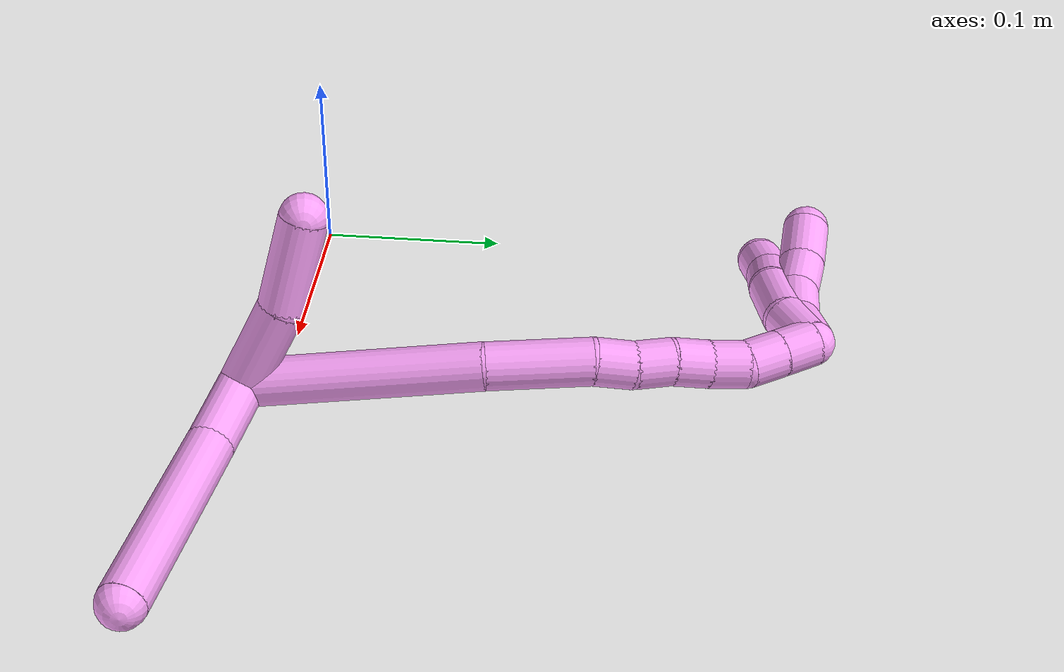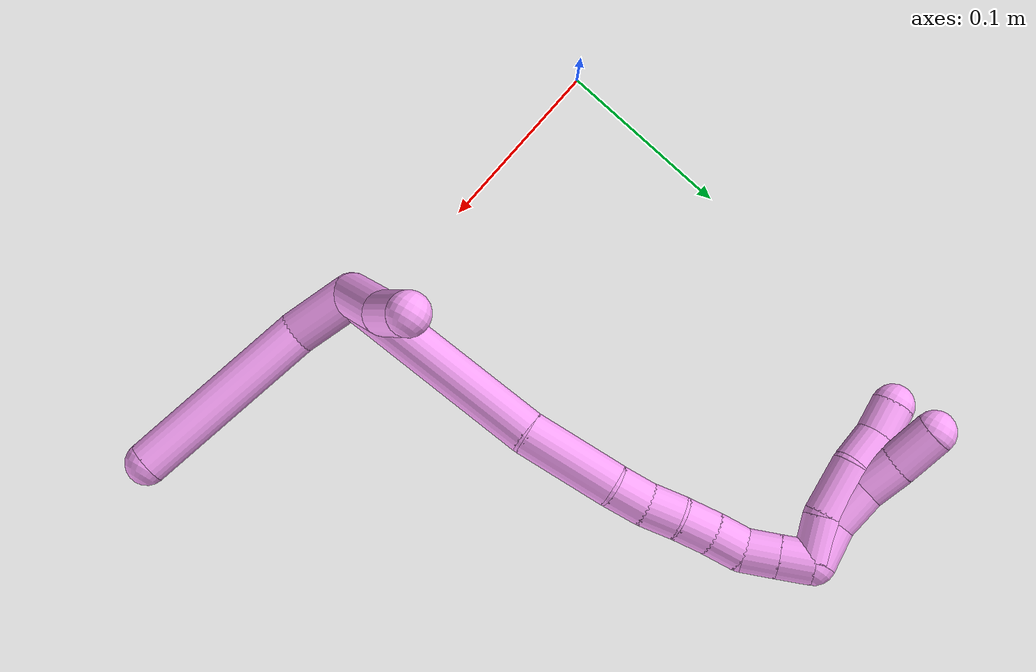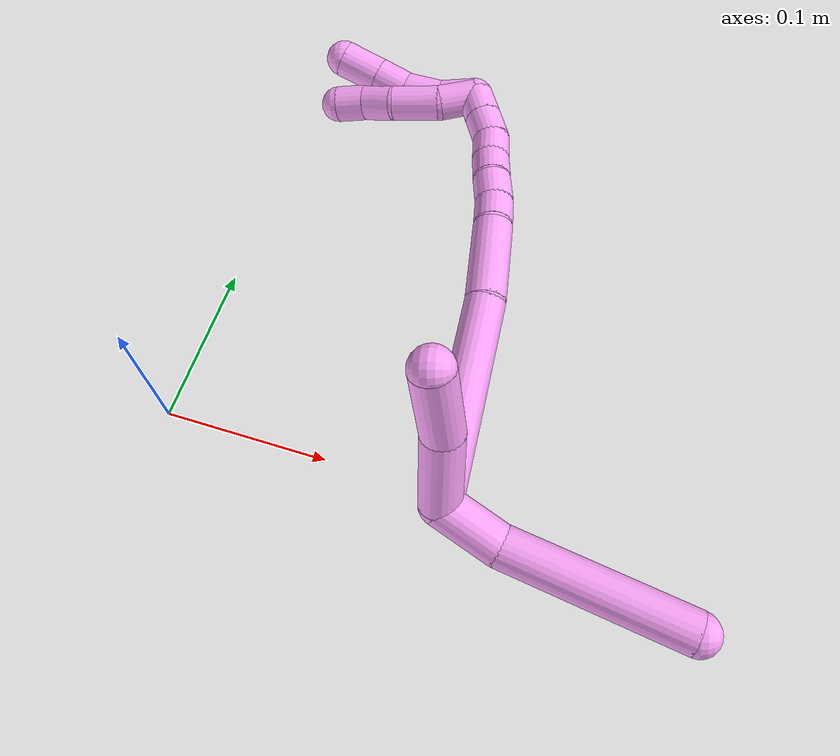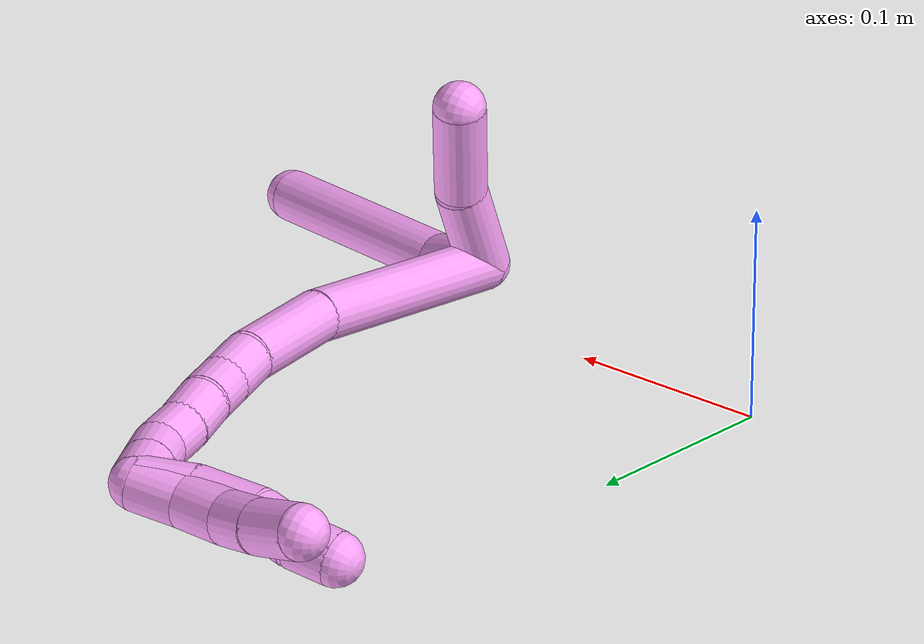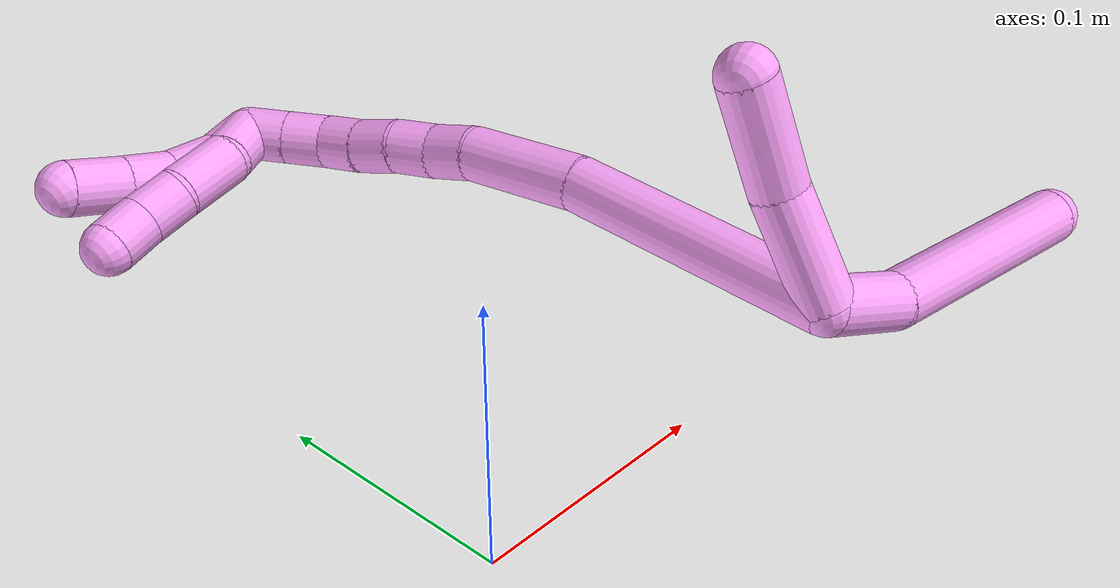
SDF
<sdf version="1.7">
 <world name="default">
  <model name="4">
   <static>0</static>
   <link name="4">
    <collision name="collision-cylinder-e_1_2_8">
     <pose>0.003963 -0.010553 -0.016032 2.55944 0.203629 0.657322</pose>
     <geometry><cylinder><radius>0.0125</radius><length>0.039198</length></cylinder></geometry>
     <surface>
      <friction><ode><mu>1.16</mu><mu2>1.16</mu2><slip1>0</slip1><slip2>0</slip2></ode></friction>
      <contact><ode><kp>1e+06</kp><kd>1</kd><max_vel>0</max_vel><min_depth>0.001</min_depth></ode></contact>
     </surface>
    </collision>
    <visual name="visual-cylinder-e_1_2_8">
     <pose>0.003963 -0.010553 -0.016032 2.55944 0.203629 0.657322</pose>
     <geometry><cylinder><radius>0.0125</radius><length>0.039198</length></cylinder></geometry>
     <material><ambient>1 0.65098 0.996078 1</ambient></material>
    </visual>
    <collision name="collision-cylinder-e_2_8_6">
     <pose>0.020075 -0.035864 -0.084064 2.86507 0.221075 1.34658</pose>
     <geometry><cylinder><radius>0.0125</radius><length>0.110802</length></cylinder></geometry>
     <surface>
      <friction><ode><mu>1.16</mu><mu2>1.16</mu2><slip1>0</slip1><slip2>0</slip2></ode></friction>
      <contact><ode><kp>1e+06</kp><kd>1</kd><max_vel>0</max_vel><min_depth>0.001</min_depth></ode></contact>
     </surface>
    </collision>
    <visual name="visual-cylinder-e_2_8_6">
     <pose>0.020075 -0.035864 -0.084064 2.86507 0.221075 1.34658</pose>
     <geometry><cylinder><radius>0.0125</radius><length>0.110802</length></cylinder></geometry>
     <material><ambient>1 0.65098 0.996078 1</ambient></material>
    </visual>
    <collision name="collision-cylinder-e_1_2_9">
     <pose>-0.001085 0.025272 -0.002677 -1.67632 -0.042655 0.04741</pose>
     <geometry><cylinder><radius>0.0125</radius><length>0.050874</length></cylinder></geometry>
     <surface>
      <friction><ode><mu>1.16</mu><mu2>1.16</mu2><slip1>0</slip1><slip2>0</slip2></ode></friction>
      <contact><ode><kp>1e+06</kp><kd>1</kd><max_vel>0</max_vel><min_depth>0.001</min_depth></ode></contact>
     </surface>
    </collision>
    <visual name="visual-cylinder-e_1_2_9">
     <pose>-0.001085 0.025272 -0.002677 -1.67632 -0.042655 0.04741</pose>
     <geometry><cylinder><radius>0.0125</radius><length>0.050874</length></cylinder></geometry>
     <material><ambient>1 0.65098 0.996078 1</ambient></material>
    </visual>
    <collision name="collision-cylinder-e_2_9_5">
     <pose>0.001546 0.074825 -0.005226 -1.56554 0.151831 -0.151037</pose>
     <geometry><cylinder><radius>0.0125</radius><length>0.049126</length></cylinder></geometry>
     <surface>
      <friction><ode><mu>1.16</mu><mu2>1.16</mu2><slip1>0</slip1><slip2>0</slip2></ode></friction>
      <contact><ode><kp>1e+06</kp><kd>1</kd><max_vel>0</max_vel><min_depth>0.001</min_depth></ode></contact>
     </surface>
    </collision>
    <visual name="visual-cylinder-e_2_9_5">
     <pose>0.001546 0.074825 -0.005226 -1.56554 0.151831 -0.151037</pose>
     <geometry><cylinder><radius>0.0125</radius><length>0.049126</length></cylinder></geometry>
     <material><ambient>1 0.65098 0.996078 1</ambient></material>
    </visual>
    <collision name="collision-cylinder-e_1_2_10">
     <pose>-0.052964 0.030767 -0.008453 -1.83891 -1.02859 1.27565</pose>
     <geometry><cylinder><radius>0.0125</radius><length>0.123665</length></cylinder></geometry>
     <surface>
      <friction><ode><mu>1.16</mu><mu2>1.16</mu2><slip1>0</slip1><slip2>0</slip2></ode></friction>
      <contact><ode><kp>1e+06</kp><kd>1</kd><max_vel>0</max_vel><min_depth>0.001</min_depth></ode></contact>
     </surface>
    </collision>
    <visual name="visual-cylinder-e_1_2_10">
     <pose>-0.052964 0.030767 -0.008453 -1.83891 -1.02859 1.27565</pose>
     <geometry><cylinder><radius>0.0125</radius><length>0.123665</length></cylinder></geometry>
     <material><ambient>1 0.65098 0.996078 1</ambient></material>
    </visual>
    <collision name="collision-cylinder-e_2_10_11">
     <pose>-0.130867 0.072982 -0.017305 -1.60574 -1.14025 1.17224</pose>
     <geometry><cylinder><radius>0.0125</radius><length>0.054886</length></cylinder></geometry>
     <surface>
      <friction><ode><mu>1.16</mu><mu2>1.16</mu2><slip1>0</slip1><slip2>0</slip2></ode></friction>
      <contact><ode><kp>1e+06</kp><kd>1</kd><max_vel>0</max_vel><min_depth>0.001</min_depth></ode></contact>
     </surface>
    </collision>
    <visual name="visual-cylinder-e_2_10_11">
     <pose>-0.130867 0.072982 -0.017305 -1.60574 -1.14025 1.17224</pose>
     <geometry><cylinder><radius>0.0125</radius><length>0.054886</length></cylinder></geometry>
     <material><ambient>1 0.65098 0.996078 1</ambient></material>
    </visual>
    <collision name="collision-cylinder-e_3_11_12">
     <pose>-0.166018 0.086894 -0.017237 -1.38293 -1.3298 1.15132</pose>
     <geometry><cylinder><radius>0.0125</radius><length>0.021034</length></cylinder></geometry>
     <surface>
      <friction><ode><mu>1.16</mu><mu2>1.16</mu2><slip1>0</slip1><slip2>0</slip2></ode></friction>
      <contact><ode><kp>1e+06</kp><kd>1</kd><max_vel>0</max_vel><min_depth>0.001</min_depth></ode></contact>
     </surface>
    </collision>
    <visual name="visual-cylinder-e_3_11_12">
     <pose>-0.166018 0.086894 -0.017237 -1.38293 -1.3298 1.15132</pose>
     <geometry><cylinder><radius>0.0125</radius><length>0.021034</length></cylinder></geometry>
     <material><ambient>1 0.65098 0.996078 1</ambient></material>
    </visual>
    <collision name="collision-cylinder-e_4_12_13">
     <pose>-0.185477 0.093253 -0.01524 -1.19667 -1.146 0.82874</pose>
     <geometry><cylinder><radius>0.0125</radius><length>0.020295</length></cylinder></geometry>
     <surface>
      <friction><ode><mu>1.16</mu><mu2>1.16</mu2><slip1>0</slip1><slip2>0</slip2></ode></friction>
      <contact><ode><kp>1e+06</kp><kd>1</kd><max_vel>0</max_vel><min_depth>0.001</min_depth></ode></contact>
     </surface>
    </collision>
    <visual name="visual-cylinder-e_4_12_13">
     <pose>-0.185477 0.093253 -0.01524 -1.19667 -1.146 0.82874</pose>
     <geometry><cylinder><radius>0.0125</radius><length>0.020295</length></cylinder></geometry>
     <material><ambient>1 0.65098 0.996078 1</ambient></material>
    </visual>
    <collision name="collision-cylinder-e_5_13_14">
     <pose>-0.204436 0.099398 -0.012517 -1.08313 -1.31417 0.86898</pose>
     <geometry><cylinder><radius>0.0125</radius><length>0.020085</length></cylinder></geometry>
     <surface>
      <friction><ode><mu>1.16</mu><mu2>1.16</mu2><slip1>0</slip1><slip2>0</slip2></ode></friction>
      <contact><ode><kp>1e+06</kp><kd>1</kd><max_vel>0</max_vel><min_depth>0.001</min_depth></ode></contact>
     </surface>
    </collision>
    <visual name="visual-cylinder-e_5_13_14">
     <pose>-0.204436 0.099398 -0.012517 -1.08313 -1.31417 0.86898</pose>
     <geometry><cylinder><radius>0.0125</radius><length>0.020085</length></cylinder></geometry>
     <material><ambient>1 0.65098 0.996078 1</ambient></material>
    </visual>
    <collision name="collision-cylinder-e_6_14_15">
     <pose>-0.223616 0.104844 -0.010736 -1.38921 -1.24034 1.07343</pose>
     <geometry><cylinder><radius>0.0125</radius><length>0.020015</length></cylinder></geometry>
     <surface>
      <friction><ode><mu>1.16</mu><mu2>1.16</mu2><slip1>0</slip1><slip2>0</slip2></ode></friction>
      <contact><ode><kp>1e+06</kp><kd>1</kd><max_vel>0</max_vel><min_depth>0.001</min_depth></ode></contact>
     </surface>
    </collision>
    <visual name="visual-cylinder-e_6_14_15">
     <pose>-0.223616 0.104844 -0.010736 -1.38921 -1.24034 1.07343</pose>
     <geometry><cylinder><radius>0.0125</radius><length>0.020015</length></cylinder></geometry>
     <material><ambient>1 0.65098 0.996078 1</ambient></material>
    </visual>
    <collision name="collision-cylinder-e_7_15_16">
     <pose>-0.241288 0.112639 -0.00674 -0.933074 -0.961457 0.513706</pose>
     <geometry><cylinder><radius>0.0125</radius><length>0.020013</length></cylinder></geometry>
     <surface>
      <friction><ode><mu>1.16</mu><mu2>1.16</mu2><slip1>0</slip1><slip2>0</slip2></ode></friction>
      <contact><ode><kp>1e+06</kp><kd>1</kd><max_vel>0</max_vel><min_depth>0.001</min_depth></ode></contact>
     </surface>
    </collision>
    <visual name="visual-cylinder-e_7_15_16">
     <pose>-0.241288 0.112639 -0.00674 -0.933074 -0.961457 0.513706</pose>
     <geometry><cylinder><radius>0.0125</radius><length>0.020013</length></cylinder></geometry>
     <material><ambient>1 0.65098 0.996078 1</ambient></material>
    </visual>
    <collision name="collision-cylinder-e_8_16_1">
     <pose>-0.257616 0.121926 0.000152 -0.931668 -0.947545 0.504544</pose>
     <geometry><cylinder><radius>0.0125</radius><length>0.020006</length></cylinder></geometry>
     <surface>
      <friction><ode><mu>1.16</mu><mu2>1.16</mu2><slip1>0</slip1><slip2>0</slip2></ode></friction>
      <contact><ode><kp>1e+06</kp><kd>1</kd><max_vel>0</max_vel><min_depth>0.001</min_depth></ode></contact>
     </surface>
    </collision>
    <visual name="visual-cylinder-e_8_16_1">
     <pose>-0.257616 0.121926 0.000152 -0.931668 -0.947545 0.504544</pose>
     <geometry><cylinder><radius>0.0125</radius><length>0.020006</length></cylinder></geometry>
     <material><ambient>1 0.65098 0.996078 1</ambient></material>
    </visual>
    <collision name="collision-cylinder-e_1_1_17">
     <pose>-0.261808 0.126109 0.01599 0.040701 0.307772 0.006314</pose>
     <geometry><cylinder><radius>0.0125</radius><length>0.02595</length></cylinder></geometry>
     <surface>
      <friction><ode><mu>1.16</mu><mu2>1.16</mu2><slip1>0</slip1><slip2>0</slip2></ode></friction>
      <contact><ode><kp>1e+06</kp><kd>1</kd><max_vel>0</max_vel><min_depth>0.001</min_depth></ode></contact>
     </surface>
    </collision>
    <visual name="visual-cylinder-e_1_1_17">
     <pose>-0.261808 0.126109 0.01599 0.040701 0.307772 0.006314</pose>
     <geometry><cylinder><radius>0.0125</radius><length>0.02595</length></cylinder></geometry>
     <material><ambient>1 0.65098 0.996078 1</ambient></material>
    </visual>
    <collision name="collision-cylinder-e_2_17_18">
     <pose>-0.25733 0.126248 0.044577 -0.03951 0.03366 -0.000665</pose>
     <geometry><cylinder><radius>0.0125</radius><length>0.032506</length></cylinder></geometry>
     <surface>
      <friction><ode><mu>1.16</mu><mu2>1.16</mu2><slip1>0</slip1><slip2>0</slip2></ode></friction>
      <contact><ode><kp>1e+06</kp><kd>1</kd><max_vel>0</max_vel><min_depth>0.001</min_depth></ode></contact>
     </surface>
    </collision>
    <visual name="visual-cylinder-e_2_17_18">
     <pose>-0.25733 0.126248 0.044577 -0.03951 0.03366 -0.000665</pose>
     <geometry><cylinder><radius>0.0125</radius><length>0.032506</length></cylinder></geometry>
     <material><ambient>1 0.65098 0.996078 1</ambient></material>
    </visual>
    <collision name="collision-cylinder-e_3_18_19">
     <pose>-0.258779 0.126546 0.071274 0.032845 -0.18841 -0.003104</pose>
     <geometry><cylinder><radius>0.0125</radius><length>0.021319</length></cylinder></geometry>
     <surface>
      <friction><ode><mu>1.16</mu><mu2>1.16</mu2><slip1>0</slip1><slip2>0</slip2></ode></friction>
      <contact><ode><kp>1e+06</kp><kd>1</kd><max_vel>0</max_vel><min_depth>0.001</min_depth></ode></contact>
     </surface>
    </collision>
    <visual name="visual-cylinder-e_3_18_19">
     <pose>-0.258779 0.126546 0.071274 0.032845 -0.18841 -0.003104</pose>
     <geometry><cylinder><radius>0.0125</radius><length>0.021319</length></cylinder></geometry>
     <material><ambient>1 0.65098 0.996078 1</ambient></material>
    </visual>
    <collision name="collision-cylinder-e_4_19_4">
     <pose>-0.260669 0.125811 0.091843 0.038687 0.010568 0.000204</pose>
     <geometry><cylinder><radius>0.0125</radius><length>0.020224</length></cylinder></geometry>
     <surface>
      <friction><ode><mu>1.16</mu><mu2>1.16</mu2><slip1>0</slip1><slip2>0</slip2></ode></friction>
      <contact><ode><kp>1e+06</kp><kd>1</kd><max_vel>0</max_vel><min_depth>0.001</min_depth></ode></contact>
     </surface>
    </collision>
    <visual name="visual-cylinder-e_4_19_4">
     <pose>-0.260669 0.125811 0.091843 0.038687 0.010568 0.000204</pose>
     <geometry><cylinder><radius>0.0125</radius><length>0.020224</length></cylinder></geometry>
     <material><ambient>1 0.65098 0.996078 1</ambient></material>
    </visual>
    <collision name="collision-cylinder-e_1_1_20">
     <pose>-0.264856 0.126485 0.015923 0.010409 0.07165 0.000373</pose>
     <geometry><cylinder><radius>0.0125</radius><length>0.024639</length></cylinder></geometry>
     <surface>
      <friction><ode><mu>1.16</mu><mu2>1.16</mu2><slip1>0</slip1><slip2>0</slip2></ode></friction>
      <contact><ode><kp>1e+06</kp><kd>1</kd><max_vel>0</max_vel><min_depth>0.001</min_depth></ode></contact>
     </surface>
    </collision>
    <visual name="visual-cylinder-e_1_1_20">
     <pose>-0.264856 0.126485 0.015923 0.010409 0.07165 0.000373</pose>
     <geometry><cylinder><radius>0.0125</radius><length>0.024639</length></cylinder></geometry>
     <material><ambient>1 0.65098 0.996078 1</ambient></material>
    </visual>
    <collision name="collision-cylinder-e_2_20_21">
     <pose>-0.265507 0.12915 0.040661 -0.220675 -0.119506 0.013255</pose>
     <geometry><cylinder><radius>0.0125</radius><length>0.025704</length></cylinder></geometry>
     <surface>
      <friction><ode><mu>1.16</mu><mu2>1.16</mu2><slip1>0</slip1><slip2>0</slip2></ode></friction>
      <contact><ode><kp>1e+06</kp><kd>1</kd><max_vel>0</max_vel><min_depth>0.001</min_depth></ode></contact>
     </surface>
    </collision>
    <visual name="visual-cylinder-e_2_20_21">
     <pose>-0.265507 0.12915 0.040661 -0.220675 -0.119506 0.013255</pose>
     <geometry><cylinder><radius>0.0125</radius><length>0.025704</length></cylinder></geometry>
     <material><ambient>1 0.65098 0.996078 1</ambient></material>
    </visual>
    <collision name="collision-cylinder-e_3_21_22">
     <pose>-0.2691 0.13687 0.063028 -0.461168 -0.184079 0.04333</pose>
     <geometry><cylinder><radius>0.0125</radius><length>0.022526</length></cylinder></geometry>
     <surface>
      <friction><ode><mu>1.16</mu><mu2>1.16</mu2><slip1>0</slip1><slip2>0</slip2></ode></friction>
      <contact><ode><kp>1e+06</kp><kd>1</kd><max_vel>0</max_vel><min_depth>0.001</min_depth></ode></contact>
     </surface>
    </collision>
    <visual name="visual-cylinder-e_3_21_22">
     <pose>-0.2691 0.13687 0.063028 -0.461168 -0.184079 0.04333</pose>
     <geometry><cylinder><radius>0.0125</radius><length>0.022526</length></cylinder></geometry>
     <material><ambient>1 0.65098 0.996078 1</ambient></material>
    </visual>
    <collision name="collision-cylinder-e_4_22_3">
     <pose>-0.27239 0.148114 0.084886 -0.486545 -0.090636 0.022509</pose>
     <geometry><cylinder><radius>0.0125</radius><length>0.027131</length></cylinder></geometry>
     <surface>
      <friction><ode><mu>1.16</mu><mu2>1.16</mu2><slip1>0</slip1><slip2>0</slip2></ode></friction>
      <contact><ode><kp>1e+06</kp><kd>1</kd><max_vel>0</max_vel><min_depth>0.001</min_depth></ode></contact>
     </surface>
    </collision>
    <visual name="visual-cylinder-e_4_22_3">
     <pose>-0.27239 0.148114 0.084886 -0.486545 -0.090636 0.022509</pose>
     <geometry><cylinder><radius>0.0125</radius><length>0.027131</length></cylinder></geometry>
     <material><ambient>1 0.65098 0.996078 1</ambient></material>
    </visual>
    <collision name="collision-sphere-3">
     <pose>-0.273618 0.154431 0.096828 0 -0 0</pose>
     <geometry><sphere><radius>0.0125</radius></sphere></geometry>
     <surface>
      <friction><ode><mu>1.16</mu><mu2>1.16</mu2><slip1>0</slip1><slip2>0</slip2></ode></friction>
      <contact><ode><kp>1e+06</kp><kd>1</kd><max_vel>0</max_vel><min_depth>0.001</min_depth></ode></contact>
     </surface>
    </collision>
    <visual name="visual-sphere-3">
     <pose>-0.273618 0.154431 0.096828 0 -0 0</pose>
     <geometry><sphere><radius>0.0125</radius></sphere></geometry>
     <material><ambient>1 0.65098 0.996078 1</ambient></material>
    </visual>
    <collision name="collision-sphere-22">
     <pose>-0.271162 0.141797 0.072944 0 -0 0</pose>
     <geometry><sphere><radius>0.0125</radius></sphere></geometry>
     <surface>
      <friction><ode><mu>1.16</mu><mu2>1.16</mu2><slip1>0</slip1><slip2>0</slip2></ode></friction>
      <contact><ode><kp>1e+06</kp><kd>1</kd><max_vel>0</max_vel><min_depth>0.001</min_depth></ode></contact>
     </surface>
    </collision>
    <visual name="visual-sphere-22">
     <pose>-0.271162 0.141797 0.072944 0 -0 0</pose>
     <geometry><sphere><radius>0.0125</radius></sphere></geometry>
     <material><ambient>1 0.65098 0.996078 1</ambient></material>
    </visual>
    <collision name="collision-sphere-21">
     <pose>-0.267039 0.131943 0.053112 0 -0 0</pose>
     <geometry><sphere><radius>0.0125</radius></sphere></geometry>
     <surface>
      <friction><ode><mu>1.16</mu><mu2>1.16</mu2><slip1>0</slip1><slip2>0</slip2></ode></friction>
      <contact><ode><kp>1e+06</kp><kd>1</kd><max_vel>0</max_vel><min_depth>0.001</min_depth></ode></contact>
     </surface>
    </collision>
    <visual name="visual-sphere-21">
     <pose>-0.267039 0.131943 0.053112 0 -0 0</pose>
     <geometry><sphere><radius>0.0125</radius></sphere></geometry>
     <material><ambient>1 0.65098 0.996078 1</ambient></material>
    </visual>
    <collision name="collision-sphere-20">
     <pose>-0.263974 0.126357 0.02821 0 -0 0</pose>
     <geometry><sphere><radius>0.0125</radius></sphere></geometry>
     <surface>
      <friction><ode><mu>1.16</mu><mu2>1.16</mu2><slip1>0</slip1><slip2>0</slip2></ode></friction>
      <contact><ode><kp>1e+06</kp><kd>1</kd><max_vel>0</max_vel><min_depth>0.001</min_depth></ode></contact>
     </surface>
    </collision>
    <visual name="visual-sphere-20">
     <pose>-0.263974 0.126357 0.02821 0 -0 0</pose>
     <geometry><sphere><radius>0.0125</radius></sphere></geometry>
     <material><ambient>1 0.65098 0.996078 1</ambient></material>
    </visual>
    <collision name="collision-sphere-4">
     <pose>-0.260562 0.12542 0.101947 0 -0 0</pose>
     <geometry><sphere><radius>0.0125</radius></sphere></geometry>
     <surface>
      <friction><ode><mu>1.16</mu><mu2>1.16</mu2><slip1>0</slip1><slip2>0</slip2></ode></friction>
      <contact><ode><kp>1e+06</kp><kd>1</kd><max_vel>0</max_vel><min_depth>0.001</min_depth></ode></contact>
     </surface>
    </collision>
    <visual name="visual-sphere-4">
     <pose>-0.260562 0.12542 0.101947 0 -0 0</pose>
     <geometry><sphere><radius>0.0125</radius></sphere></geometry>
     <material><ambient>1 0.65098 0.996078 1</ambient></material>
    </visual>
    <collision name="collision-sphere-10">
     <pose>-0.105928 0.061535 -0.016905 0 -0 0</pose>
     <geometry><sphere><radius>0.0125</radius></sphere></geometry>
     <surface>
      <friction><ode><mu>1.16</mu><mu2>1.16</mu2><slip1>0</slip1><slip2>0</slip2></ode></friction>
      <contact><ode><kp>1e+06</kp><kd>1</kd><max_vel>0</max_vel><min_depth>0.001</min_depth></ode></contact>
     </surface>
    </collision>
    <visual name="visual-sphere-10">
     <pose>-0.105928 0.061535 -0.016905 0 -0 0</pose>
     <geometry><sphere><radius>0.0125</radius></sphere></geometry>
     <material><ambient>1 0.65098 0.996078 1</ambient></material>
    </visual>
    <collision name="collision-sphere-5">
     <pose>0.005261 0.099105 -0.005098 0 -0 0</pose>
     <geometry><sphere><radius>0.0125</radius></sphere></geometry>
     <surface>
      <friction><ode><mu>1.16</mu><mu2>1.16</mu2><slip1>0</slip1><slip2>0</slip2></ode></friction>
      <contact><ode><kp>1e+06</kp><kd>1</kd><max_vel>0</max_vel><min_depth>0.001</min_depth></ode></contact>
     </surface>
    </collision>
    <visual name="visual-sphere-5">
     <pose>0.005261 0.099105 -0.005098 0 -0 0</pose>
     <geometry><sphere><radius>0.0125</radius></sphere></geometry>
     <material><ambient>1 0.65098 0.996078 1</ambient></material>
    </visual>
    <collision name="collision-sphere-6">
     <pose>0.032223 -0.050621 -0.136063 0 -0 0</pose>
     <geometry><sphere><radius>0.0125</radius></sphere></geometry>
     <surface>
      <friction><ode><mu>1.16</mu><mu2>1.16</mu2><slip1>0</slip1><slip2>0</slip2></ode></friction>
      <contact><ode><kp>1e+06</kp><kd>1</kd><max_vel>0</max_vel><min_depth>0.001</min_depth></ode></contact>
     </surface>
    </collision>
    <visual name="visual-sphere-6">
     <pose>0.032223 -0.050621 -0.136063 0 -0 0</pose>
     <geometry><sphere><radius>0.0125</radius></sphere></geometry>
     <material><ambient>1 0.65098 0.996078 1</ambient></material>
    </visual>
    <collision name="collision-sphere-9">
     <pose>-0.002169 0.050545 -0.005354 0 -0 0</pose>
     <geometry><sphere><radius>0.0125</radius></sphere></geometry>
     <surface>
      <friction><ode><mu>1.16</mu><mu2>1.16</mu2><slip1>0</slip1><slip2>0</slip2></ode></friction>
      <contact><ode><kp>1e+06</kp><kd>1</kd><max_vel>0</max_vel><min_depth>0.001</min_depth></ode></contact>
     </surface>
    </collision>
    <visual name="visual-sphere-9">
     <pose>-0.002169 0.050545 -0.005354 0 -0 0</pose>
     <geometry><sphere><radius>0.0125</radius></sphere></geometry>
     <material><ambient>1 0.65098 0.996078 1</ambient></material>
    </visual>
    <collision name="collision-sphere-2">
     <geometry><sphere><radius>0.0125</radius></sphere></geometry>
     <surface>
      <friction><ode><mu>1.16</mu><mu2>1.16</mu2><slip1>0</slip1><slip2>0</slip2></ode></friction>
      <contact><ode><kp>1e+06</kp><kd>1</kd><max_vel>0</max_vel><min_depth>0.001</min_depth></ode></contact>
     </surface>
    </collision>
    <visual name="visual-sphere-2">
     <geometry><sphere><radius>0.0125</radius></sphere></geometry>
     <material><ambient>1 0.65098 0.996078 1</ambient></material>
    </visual>
    <collision name="collision-sphere-19">
     <pose>-0.260776 0.126202 0.081739 0 -0 0</pose>
     <geometry><sphere><radius>0.0125</radius></sphere></geometry>
     <surface>
      <friction><ode><mu>1.16</mu><mu2>1.16</mu2><slip1>0</slip1><slip2>0</slip2></ode></friction>
      <contact><ode><kp>1e+06</kp><kd>1</kd><max_vel>0</max_vel><min_depth>0.001</min_depth></ode></contact>
     </surface>
    </collision>
    <visual name="visual-sphere-19">
     <pose>-0.260776 0.126202 0.081739 0 -0 0</pose>
     <geometry><sphere><radius>0.0125</radius></sphere></geometry>
     <material><ambient>1 0.65098 0.996078 1</ambient></material>
    </visual>
    <collision name="collision-sphere-8">
     <pose>0.007927 -0.021107 -0.032065 0 -0 0</pose>
     <geometry><sphere><radius>0.0125</radius></sphere></geometry>
     <surface>
      <friction><ode><mu>1.16</mu><mu2>1.16</mu2><slip1>0</slip1><slip2>0</slip2></ode></friction>
      <contact><ode><kp>1e+06</kp><kd>1</kd><max_vel>0</max_vel><min_depth>0.001</min_depth></ode></contact>
     </surface>
    </collision>
    <visual name="visual-sphere-8">
     <pose>0.007927 -0.021107 -0.032065 0 -0 0</pose>
     <geometry><sphere><radius>0.0125</radius></sphere></geometry>
     <material><ambient>1 0.65098 0.996078 1</ambient></material>
    </visual>
    <collision name="collision-sphere-11">
     <pose>-0.155805 0.084428 -0.017706 0 -0 0</pose>
     <geometry><sphere><radius>0.0125</radius></sphere></geometry>
     <surface>
      <friction><ode><mu>1.16</mu><mu2>1.16</mu2><slip1>0</slip1><slip2>0</slip2></ode></friction>
      <contact><ode><kp>1e+06</kp><kd>1</kd><max_vel>0</max_vel><min_depth>0.001</min_depth></ode></contact>
     </surface>
    </collision>
    <visual name="visual-sphere-11">
     <pose>-0.155805 0.084428 -0.017706 0 -0 0</pose>
     <geometry><sphere><radius>0.0125</radius></sphere></geometry>
     <material><ambient>1 0.65098 0.996078 1</ambient></material>
    </visual>
    <collision name="collision-sphere-12">
     <pose>-0.176232 0.08936 -0.016768 0 -0 0</pose>
     <geometry><sphere><radius>0.0125</radius></sphere></geometry>
     <surface>
      <friction><ode><mu>1.16</mu><mu2>1.16</mu2><slip1>0</slip1><slip2>0</slip2></ode></friction>
      <contact><ode><kp>1e+06</kp><kd>1</kd><max_vel>0</max_vel><min_depth>0.001</min_depth></ode></contact>
     </surface>
    </collision>
    <visual name="visual-sphere-12">
     <pose>-0.176232 0.08936 -0.016768 0 -0 0</pose>
     <geometry><sphere><radius>0.0125</radius></sphere></geometry>
     <material><ambient>1 0.65098 0.996078 1</ambient></material>
    </visual>
    <collision name="collision-sphere-13">
     <pose>-0.194723 0.097146 -0.013711 0 -0 0</pose>
     <geometry><sphere><radius>0.0125</radius></sphere></geometry>
     <surface>
      <friction><ode><mu>1.16</mu><mu2>1.16</mu2><slip1>0</slip1><slip2>0</slip2></ode></friction>
      <contact><ode><kp>1e+06</kp><kd>1</kd><max_vel>0</max_vel><min_depth>0.001</min_depth></ode></contact>
     </surface>
    </collision>
    <visual name="visual-sphere-13">
     <pose>-0.194723 0.097146 -0.013711 0 -0 0</pose>
     <geometry><sphere><radius>0.0125</radius></sphere></geometry>
     <material><ambient>1 0.65098 0.996078 1</ambient></material>
    </visual>
    <collision name="collision-sphere-14">
     <pose>-0.21415 0.10165 -0.011322 0 -0 0</pose>
     <geometry><sphere><radius>0.0125</radius></sphere></geometry>
     <surface>
      <friction><ode><mu>1.16</mu><mu2>1.16</mu2><slip1>0</slip1><slip2>0</slip2></ode></friction>
      <contact><ode><kp>1e+06</kp><kd>1</kd><max_vel>0</max_vel><min_depth>0.001</min_depth></ode></contact>
     </surface>
    </collision>
    <visual name="visual-sphere-14">
     <pose>-0.21415 0.10165 -0.011322 0 -0 0</pose>
     <geometry><sphere><radius>0.0125</radius></sphere></geometry>
     <material><ambient>1 0.65098 0.996078 1</ambient></material>
    </visual>
    <collision name="collision-sphere-15">
     <pose>-0.233082 0.108037 -0.01015 0 -0 0</pose>
     <geometry><sphere><radius>0.0125</radius></sphere></geometry>
     <surface>
      <friction><ode><mu>1.16</mu><mu2>1.16</mu2><slip1>0</slip1><slip2>0</slip2></ode></friction>
      <contact><ode><kp>1e+06</kp><kd>1</kd><max_vel>0</max_vel><min_depth>0.001</min_depth></ode></contact>
     </surface>
    </collision>
    <visual name="visual-sphere-15">
     <pose>-0.233082 0.108037 -0.01015 0 -0 0</pose>
     <geometry><sphere><radius>0.0125</radius></sphere></geometry>
     <material><ambient>1 0.65098 0.996078 1</ambient></material>
    </visual>
    <collision name="collision-sphere-16">
     <pose>-0.249493 0.11724 -0.00333 0 -0 0</pose>
     <geometry><sphere><radius>0.0125</radius></sphere></geometry>
     <surface>
      <friction><ode><mu>1.16</mu><mu2>1.16</mu2><slip1>0</slip1><slip2>0</slip2></ode></friction>
      <contact><ode><kp>1e+06</kp><kd>1</kd><max_vel>0</max_vel><min_depth>0.001</min_depth></ode></contact>
     </surface>
    </collision>
    <visual name="visual-sphere-16">
     <pose>-0.249493 0.11724 -0.00333 0 -0 0</pose>
     <geometry><sphere><radius>0.0125</radius></sphere></geometry>
     <material><ambient>1 0.65098 0.996078 1</ambient></material>
    </visual>
    <collision name="collision-sphere-1">
     <pose>-0.265738 0.126613 0.003635 0 -0 0</pose>
     <geometry><sphere><radius>0.0125</radius></sphere></geometry>
     <surface>
      <friction><ode><mu>1.16</mu><mu2>1.16</mu2><slip1>0</slip1><slip2>0</slip2></ode></friction>
      <contact><ode><kp>1e+06</kp><kd>1</kd><max_vel>0</max_vel><min_depth>0.001</min_depth></ode></contact>
     </surface>
    </collision>
    <visual name="visual-sphere-1">
     <pose>-0.265738 0.126613 0.003635 0 -0 0</pose>
     <geometry><sphere><radius>0.0125</radius></sphere></geometry>
     <material><ambient>1 0.65098 0.996078 1</ambient></material>
    </visual>
    <collision name="collision-sphere-18">
     <pose>-0.256783 0.126889 0.060808 0 -0 0</pose>
     <geometry><sphere><radius>0.0125</radius></sphere></geometry>
     <surface>
      <friction><ode><mu>1.16</mu><mu2>1.16</mu2><slip1>0</slip1><slip2>0</slip2></ode></friction>
      <contact><ode><kp>1e+06</kp><kd>1</kd><max_vel>0</max_vel><min_depth>0.001</min_depth></ode></contact>
     </surface>
    </collision>
    <visual name="visual-sphere-18">
     <pose>-0.256783 0.126889 0.060808 0 -0 0</pose>
     <geometry><sphere><radius>0.0125</radius></sphere></geometry>
     <material><ambient>1 0.65098 0.996078 1</ambient></material>
    </visual>
    <collision name="collision-sphere-17">
     <pose>-0.257877 0.125606 0.028346 0 -0 0</pose>
     <geometry><sphere><radius>0.0125</radius></sphere></geometry>
     <surface>
      <friction><ode><mu>1.16</mu><mu2>1.16</mu2><slip1>0</slip1><slip2>0</slip2></ode></friction>
      <contact><ode><kp>1e+06</kp><kd>1</kd><max_vel>0</max_vel><min_depth>0.001</min_depth></ode></contact>
     </surface>
    </collision>
    <visual name="visual-sphere-17">
     <pose>-0.257877 0.125606 0.028346 0 -0 0</pose>
     <geometry><sphere><radius>0.0125</radius></sphere></geometry>
     <material><ambient>1 0.65098 0.996078 1</ambient></material>
    </visual>
    <inertial>
     <pose>-0.119871 0.062733 -0.004266 0 -0 0</pose>
     <mass>0.75</mass>
     <inertia>
      <ixx>0.000289</ixx>
      <ixy>0</ixy>
      <ixz>0</ixz>
      <iyy>0.000351</iyy>
      <iyz>0</iyz>
      <izz>5.5e-05</izz>
     </inertia>
    </inertial>
   </link>
   <pose>0.173343 -0.012275 0.022984 1.73685 -0.428856 -1.44998</pose>
  </model>
 </world>
</sdf>
